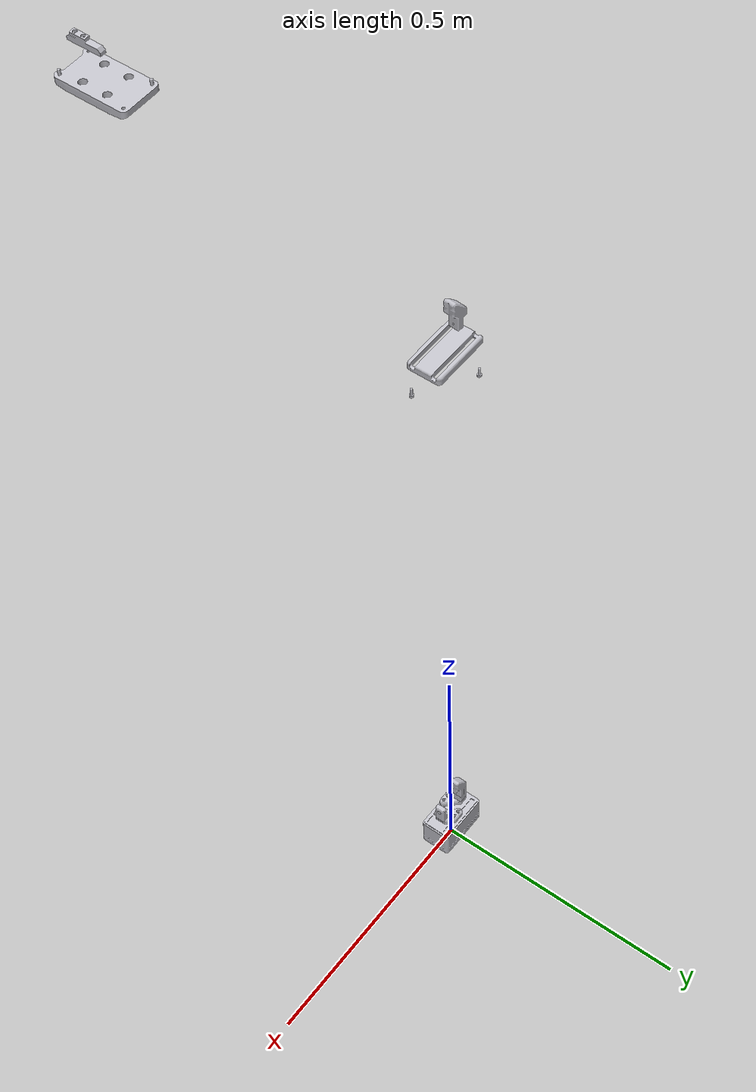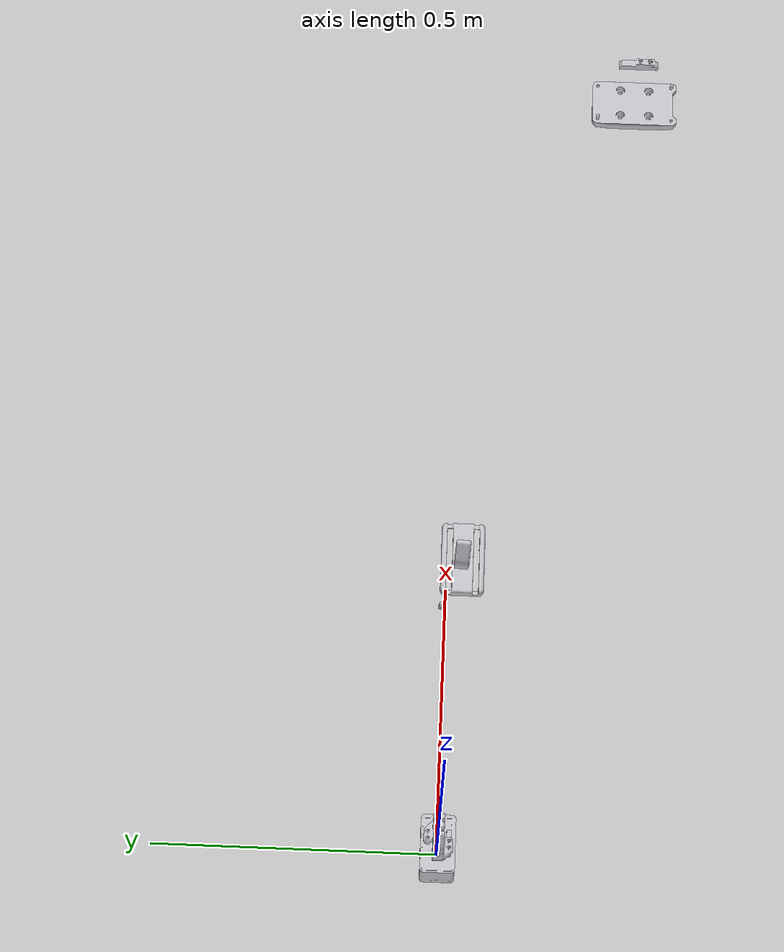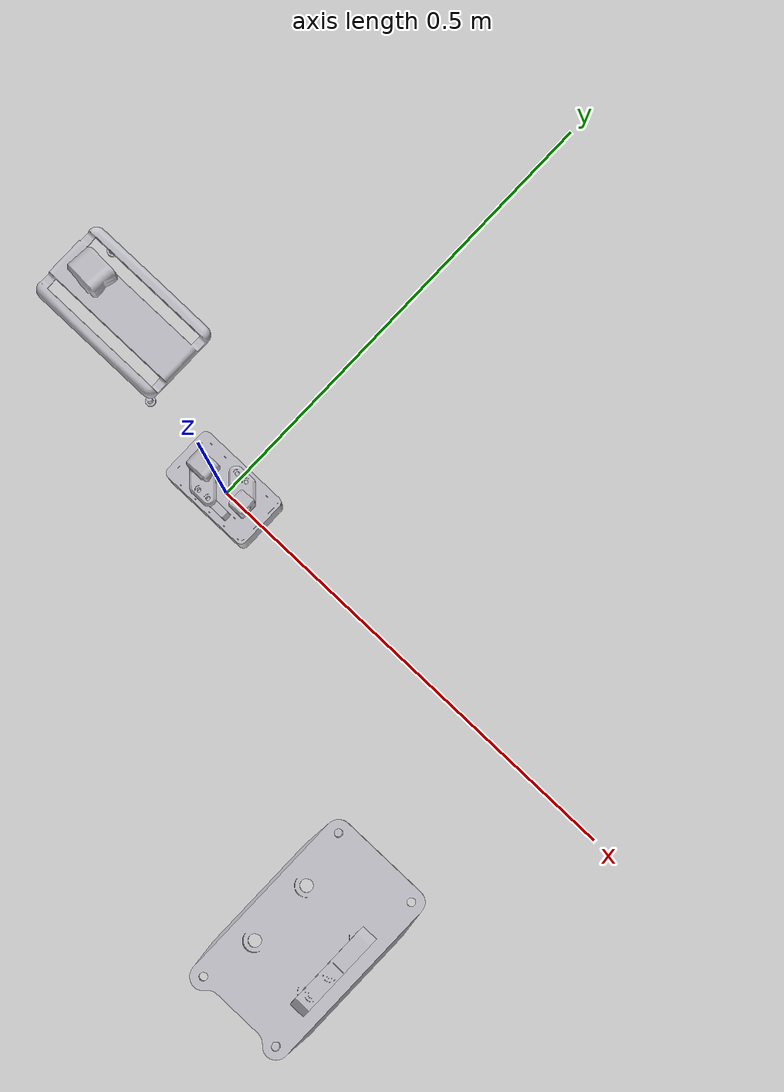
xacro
<?xml version="1.0" ?>
<robot name="gripkit_cr_plus_l_bb" xmlns:xacro="http://www.ros.org/wiki/xacro">

<xacro:include filename="$(find gripkit_cr_plus_l_bb_description)/urdf/gripkit_cr_plus_l_bb.trans" />
<xacro:include filename="$(find gripkit_cr_plus_l_bb_description)/urdf/gripkit_cr_plus_l_bb.gazebo" />

<xacro:property name="max_velocity" value="10"/>
<xacro:property name="max_effort" value="100"/>

<link name="SF-ISO50-CRG200_Customer">
  <inertial>
    <origin xyz="-0.000839387245317249 1.3268462236734284e-07 0.0056277999249054874" rpy="0 0 0"/>
    <mass value="0.16831092346442011"/>
    <inertia ixx="5.7e-05" iyy="0.000144" izz="0.000197" ixy="-0.0" iyz="0.0" ixz="1e-06"/>
  </inertial>
  <visual>
    <origin xyz="0 0 0" rpy="0 0 0"/>
    <geometry>
      <mesh filename="package://gripkit_cr_plus_l_bb_description/meshes/SF-ISO50-CRG200_Customer.stl" scale="0.001 0.001 0.001"/>
    </geometry>
    <material name="silver"/>
  </visual>
  <collision>
    <origin xyz="0 0 0" rpy="0 0 0"/>
    <geometry>
      <mesh filename="package://gripkit_cr_plus_l_bb_description/meshes/SF-ISO50-CRG200_Customer.stl" scale="0.001 0.001 0.001"/>
    </geometry>
  </collision>
</link>

<link name="CRG200_body">
  <inertial>
    <origin xyz="-0.046013419522296255 0.023500046460400374 0.029719376870480135" rpy="0 0 0"/>
    <mass value="1.024019455093708"/>
    <inertia ixx="0.000598" iyy="0.001224" izz="0.001229" ixy="0.0" iyz="-0.0" ixz="-0.0"/>
  </inertial>
  <visual>
    <origin xyz="-0.046 0.0235 -0.011" rpy="0 0 0"/>
    <geometry>
      <mesh filename="package://gripkit_cr_plus_l_bb_description/meshes/CRG200_body.stl" scale="0.001 0.001 0.001"/>
    </geometry>
    <material name="silver"/>
  </visual>
  <collision>
    <origin xyz="-0.046 0.0235 -0.011" rpy="0 0 0"/>
    <geometry>
      <mesh filename="package://gripkit_cr_plus_l_bb_description/meshes/CRG200_body.stl" scale="0.001 0.001 0.001"/>
    </geometry>
  </collision>
</link>

<link name="CRG200_base_jaw_1">
  <inertial>
    <origin xyz="-0.001116596745818358 -2.0816681711721685e-17 0.004896836508835337" rpy="0 0 0"/>
    <mass value="0.028974809674202275"/>
    <inertia ixx="0.0" iyy="5e-06" izz="5e-06" ixy="0.0" iyz="0.0" ixz="0.0"/>
  </inertial>
  <visual>
    <origin xyz="-0.0 0.0185 -0.0686" rpy="0 0 0"/>
    <geometry>
      <mesh filename="package://gripkit_cr_plus_l_bb_description/meshes/CRG200_base_jaw_1.stl" scale="0.001 0.001 0.001"/>
    </geometry>
    <material name="silver"/>
  </visual>
  <collision>
    <origin xyz="-0.0 0.0185 -0.0686" rpy="0 0 0"/>
    <geometry>
      <mesh filename="package://gripkit_cr_plus_l_bb_description/meshes/CRG200_base_jaw_1.stl" scale="0.001 0.001 0.001"/>
    </geometry>
  </collision>
</link>

<link name="CRG200_base_jaw_2">
  <inertial>
    <origin xyz="0.001116596745818374 1.0408340855860843e-17 0.004896836508835337" rpy="0 0 0"/>
    <mass value="0.028974809674202275"/>
    <inertia ixx="0.0" iyy="5e-06" izz="5e-06" ixy="0.0" iyz="-0.0" ixz="-0.0"/>
  </inertial>
  <visual>
    <origin xyz="-0.0 -0.0185 -0.0686" rpy="0 0 0"/>
    <geometry>
      <mesh filename="package://gripkit_cr_plus_l_bb_description/meshes/CRG200_base_jaw_2.stl" scale="0.001 0.001 0.001"/>
    </geometry>
    <material name="silver"/>
  </visual>
  <collision>
    <origin xyz="-0.0 -0.0185 -0.0686" rpy="0 0 0"/>
    <geometry>
      <mesh filename="package://gripkit_cr_plus_l_bb_description/meshes/CRG200_base_jaw_2.stl" scale="0.001 0.001 0.001"/>
    </geometry>
  </collision>
</link>

<link name="CRG200_top_cover">
  <inertial>
    <origin xyz="-2.837104009083995e-09 7.283818491274739e-09 0.0040439255937821245" rpy="0 0 0"/>
    <mass value="0.117790703444327"/>
    <inertia ixx="3.5e-05" iyy="0.000112" izz="0.000144" ixy="-0.0" iyz="-0.0" ixz="0.0"/>
  </inertial>
  <visual>
    <origin xyz="-0.0 0.0 -0.0711" rpy="0 0 0"/>
    <geometry>
      <mesh filename="package://gripkit_cr_plus_l_bb_description/meshes/CRG200_top_cover.stl" scale="0.001 0.001 0.001"/>
    </geometry>
    <material name="silver"/>
  </visual>
  <collision>
    <origin xyz="-0.0 0.0 -0.0711" rpy="0 0 0"/>
    <geometry>
      <mesh filename="package://gripkit_cr_plus_l_bb_description/meshes/CRG200_top_cover.stl" scale="0.001 0.001 0.001"/>
    </geometry>
  </collision>
</link>

<link name="ISO_4762_-_M4_x_12ISO_1">
  <inertial>
    <origin xyz="-6.938893903907228e-18 4.0060663120122797e-13 0.0022480078452116357" rpy="0 0 0"/>
    <mass value="0.002203374250243251"/>
    <inertia ixx="0.0" iyy="0.0" izz="0.0" ixy="0.0" iyz="0.0" ixz="0.0"/>
  </inertial>
  <visual>
    <origin xyz="0.046 0.0235 -0.0065" rpy="0 0 0"/>
    <geometry>
      <mesh filename="package://gripkit_cr_plus_l_bb_description/meshes/ISO_4762_-_M4_x_12ISO_1.stl" scale="0.001 0.001 0.001"/>
    </geometry>
    <material name="silver"/>
  </visual>
  <collision>
    <origin xyz="0.046 0.0235 -0.0065" rpy="0 0 0"/>
    <geometry>
      <mesh filename="package://gripkit_cr_plus_l_bb_description/meshes/ISO_4762_-_M4_x_12ISO_1.stl" scale="0.001 0.001 0.001"/>
    </geometry>
  </collision>
</link>

<link name="ISO_4762_-_M4_x_12ISO_2">
  <inertial>
    <origin xyz="6.938893903907228e-18 4.0060663120122797e-13 0.0022480078452116357" rpy="0 0 0"/>
    <mass value="0.002203374250243251"/>
    <inertia ixx="0.0" iyy="0.0" izz="0.0" ixy="-0.0" iyz="0.0" ixz="-0.0"/>
  </inertial>
  <visual>
    <origin xyz="-0.046 0.0235 -0.0065" rpy="0 0 0"/>
    <geometry>
      <mesh filename="package://gripkit_cr_plus_l_bb_description/meshes/ISO_4762_-_M4_x_12ISO_2.stl" scale="0.001 0.001 0.001"/>
    </geometry>
    <material name="silver"/>
  </visual>
  <collision>
    <origin xyz="-0.046 0.0235 -0.0065" rpy="0 0 0"/>
    <geometry>
      <mesh filename="package://gripkit_cr_plus_l_bb_description/meshes/ISO_4762_-_M4_x_12ISO_2.stl" scale="0.001 0.001 0.001"/>
    </geometry>
  </collision>
</link>

<link name="ISO_4762_-_M4_x_12ISO_3">
  <inertial>
    <origin xyz="6.938893903907228e-18 4.006101006481799e-13 0.0022480078452116357" rpy="0 0 0"/>
    <mass value="0.002203374250243251"/>
    <inertia ixx="0.0" iyy="0.0" izz="0.0" ixy="0.0" iyz="0.0" ixz="-0.0"/>
  </inertial>
  <visual>
    <origin xyz="-0.046 -0.0235 -0.0065" rpy="0 0 0"/>
    <geometry>
      <mesh filename="package://gripkit_cr_plus_l_bb_description/meshes/ISO_4762_-_M4_x_12ISO_3.stl" scale="0.001 0.001 0.001"/>
    </geometry>
    <material name="silver"/>
  </visual>
  <collision>
    <origin xyz="-0.046 -0.0235 -0.0065" rpy="0 0 0"/>
    <geometry>
      <mesh filename="package://gripkit_cr_plus_l_bb_description/meshes/ISO_4762_-_M4_x_12ISO_3.stl" scale="0.001 0.001 0.001"/>
    </geometry>
  </collision>
</link>

<link name="ISO_4762_-_M4_x_12ISO_4">
  <inertial>
    <origin xyz="-6.938893903907228e-18 4.006101006481799e-13 0.0022480078452116357" rpy="0 0 0"/>
    <mass value="0.002203374250243251"/>
    <inertia ixx="0.0" iyy="0.0" izz="0.0" ixy="0.0" iyz="0.0" ixz="0.0"/>
  </inertial>
  <visual>
    <origin xyz="0.046 -0.0235 -0.0065" rpy="0 0 0"/>
    <geometry>
      <mesh filename="package://gripkit_cr_plus_l_bb_description/meshes/ISO_4762_-_M4_x_12ISO_4.stl" scale="0.001 0.001 0.001"/>
    </geometry>
    <material name="silver"/>
  </visual>
  <collision>
    <origin xyz="0.046 -0.0235 -0.0065" rpy="0 0 0"/>
    <geometry>
      <mesh filename="package://gripkit_cr_plus_l_bb_description/meshes/ISO_4762_-_M4_x_12ISO_4.stl" scale="0.001 0.001 0.001"/>
    </geometry>
  </collision>
</link>

<link name="BE_20-030_CUSTOMER_v1_1">
  <inertial>
    <origin xyz="-0.01548587046158074 0.010207189127588168 0.00490301880176619" rpy="0 0 0"/>
    <mass value="0.07101056528211638"/>
    <inertia ixx="7e-06" iyy="8e-06" izz="1.4e-05" ixy="4e-06" iyz="-0.0" ixz="0.0"/>
  </inertial>
  <visual>
    <origin xyz="0.002 0.0185 -0.081" rpy="0 0 0"/>
    <geometry>
      <mesh filename="package://gripkit_cr_plus_l_bb_description/meshes/BE_20-030_CUSTOMER_v1_1.stl" scale="0.001 0.001 0.001"/>
    </geometry>
    <material name="silver"/>
  </visual>
  <collision>
    <origin xyz="0.002 0.0185 -0.081" rpy="0 0 0"/>
    <geometry>
      <mesh filename="package://gripkit_cr_plus_l_bb_description/meshes/BE_20-030_CUSTOMER_v1_1.stl" scale="0.001 0.001 0.001"/>
    </geometry>
  </collision>
</link>

<link name="BE_20-030_CUSTOMER_v1_2">
  <inertial>
    <origin xyz="0.015485870461580746 -0.010207189127588183 0.004903018801767051" rpy="0 0 0"/>
    <mass value="0.07101056528211638"/>
    <inertia ixx="7e-06" iyy="8e-06" izz="1.4e-05" ixy="4e-06" iyz="0.0" ixz="-0.0"/>
  </inertial>
  <visual>
    <origin xyz="-0.002 -0.0185 -0.081" rpy="0 0 0"/>
    <geometry>
      <mesh filename="package://gripkit_cr_plus_l_bb_description/meshes/BE_20-030_CUSTOMER_v1_2.stl" scale="0.001 0.001 0.001"/>
    </geometry>
    <material name="silver"/>
  </visual>
  <collision>
    <origin xyz="-0.002 -0.0185 -0.081" rpy="0 0 0"/>
    <geometry>
      <mesh filename="package://gripkit_cr_plus_l_bb_description/meshes/BE_20-030_CUSTOMER_v1_2.stl" scale="0.001 0.001 0.001"/>
    </geometry>
  </collision>
</link>

<link name="AC_20-025_CUSTOMER_v1_1">
  <inertial>
    <origin xyz="-0.001943760034278895 4.121102397658485e-17 0.014328388306272574" rpy="0 0 0"/>
    <mass value="0.07018824497649055"/>
    <inertia ixx="9e-06" iyy="9e-06" izz="4e-06" ixy="-0.0" iyz="-0.0" ixz="1e-06"/>
  </inertial>
  <visual>
    <origin xyz="0.027 -0.0 -0.091" rpy="0 0 0"/>
    <geometry>
      <mesh filename="package://gripkit_cr_plus_l_bb_description/meshes/AC_20-025_CUSTOMER_v1_1.stl" scale="0.001 0.001 0.001"/>
    </geometry>
    <material name="silver"/>
  </visual>
  <collision>
    <origin xyz="0.027 -0.0 -0.091" rpy="0 0 0"/>
    <geometry>
      <mesh filename="package://gripkit_cr_plus_l_bb_description/meshes/AC_20-025_CUSTOMER_v1_1.stl" scale="0.001 0.001 0.001"/>
    </geometry>
  </collision>
</link>

<link name="AC_20-025_CUSTOMER_v1_2">
  <inertial>
    <origin xyz="0.0019437600342788186 1.639628989286934e-17 0.014328388306273435" rpy="0 0 0"/>
    <mass value="0.07018824497649055"/>
    <inertia ixx="9e-06" iyy="9e-06" izz="4e-06" ixy="-0.0" iyz="0.0" ixz="-1e-06"/>
  </inertial>
  <visual>
    <origin xyz="-0.027 0.0 -0.091" rpy="0 0 0"/>
    <geometry>
      <mesh filename="package://gripkit_cr_plus_l_bb_description/meshes/AC_20-025_CUSTOMER_v1_2.stl" scale="0.001 0.001 0.001"/>
    </geometry>
    <material name="silver"/>
  </visual>
  <collision>
    <origin xyz="-0.027 0.0 -0.091" rpy="0 0 0"/>
    <geometry>
      <mesh filename="package://gripkit_cr_plus_l_bb_description/meshes/AC_20-025_CUSTOMER_v1_2.stl" scale="0.001 0.001 0.001"/>
    </geometry>
  </collision>
</link>

<link name="FT_20-CR_CUSTOMER_v1_1">
  <inertial>
    <origin xyz="0.0056745324669938944 -3.914404976963761e-15 0.020919520309735193" rpy="0 0 0"/>
    <mass value="0.13587538757333883"/>
    <inertia ixx="3e-05" iyy="3.2e-05" izz="1.1e-05" ixy="-0.0" iyz="-0.0" ixz="-5e-06"/>
  </inertial>
  <visual>
    <origin xyz="0.027 -0.0 -0.116" rpy="0 0 0"/>
    <geometry>
      <mesh filename="package://gripkit_cr_plus_l_bb_description/meshes/FT_20-CR_CUSTOMER_v1_1.stl" scale="0.001 0.001 0.001"/>
    </geometry>
    <material name="silver"/>
  </visual>
  <collision>
    <origin xyz="0.027 -0.0 -0.116" rpy="0 0 0"/>
    <geometry>
      <mesh filename="package://gripkit_cr_plus_l_bb_description/meshes/FT_20-CR_CUSTOMER_v1_1.stl" scale="0.001 0.001 0.001"/>
    </geometry>
  </collision>
</link>

<link name="FT_20-CR_CUSTOMER_v1_2">
  <inertial>
    <origin xyz="-0.005674532466994044 3.957899792938257e-15 0.020919520309735193" rpy="0 0 0"/>
    <mass value="0.13587538757333883"/>
    <inertia ixx="3e-05" iyy="3.2e-05" izz="1.1e-05" ixy="-0.0" iyz="0.0" ixz="5e-06"/>
  </inertial>
  <visual>
    <origin xyz="-0.027 -0.0 -0.116" rpy="0 0 0"/>
    <geometry>
      <mesh filename="package://gripkit_cr_plus_l_bb_description/meshes/FT_20-CR_CUSTOMER_v1_2.stl" scale="0.001 0.001 0.001"/>
    </geometry>
    <material name="silver"/>
  </visual>
  <collision>
    <origin xyz="-0.027 -0.0 -0.116" rpy="0 0 0"/>
    <geometry>
      <mesh filename="package://gripkit_cr_plus_l_bb_description/meshes/FT_20-CR_CUSTOMER_v1_2.stl" scale="0.001 0.001 0.001"/>
    </geometry>
  </collision>
</link>

<joint name="Rigid10" type="fixed">
  <origin xyz="0.046 -0.0235 0.011" rpy="0 0 0"/>
  <parent link="SF-ISO50-CRG200_Customer"/>
  <child link="CRG200_body"/>
</joint>

<joint name="Slider01" type="prismatic">
  <origin xyz="-0.046 0.005 0.0576" rpy="0 0 0"/>
  <parent link="CRG200_body"/>
  <child link="CRG200_base_jaw_1"/>
  <axis xyz="1.0 0.0 0.0"/>
  <limit upper="0.021" lower="-0.021" effort="${max_effort}" velocity="${max_velocity}"/>
</joint>

<joint name="Slider02" type="prismatic">
  <origin xyz="-0.046 0.042 0.0576" rpy="0 0 0"/>
  <parent link="CRG200_body"/>
  <child link="CRG200_base_jaw_2"/>
  <axis xyz="1.0 0.0 0.0"/>
  <limit upper="0.021" lower="-0.021" effort="${max_effort}" velocity="${max_velocity}"/>
</joint>

<joint name="Rigid11" type="fixed">
  <origin xyz="-0.046 0.0235 0.0601" rpy="0 0 0"/>
  <parent link="CRG200_body"/>
  <child link="CRG200_top_cover"/>
</joint>

<joint name="Rigid12" type="fixed">
  <origin xyz="-0.046 -0.0235 0.0065" rpy="0 0 0"/>
  <parent link="SF-ISO50-CRG200_Customer"/>
  <child link="ISO_4762_-_M4_x_12ISO_1"/>
</joint>

<joint name="Rigid13" type="fixed">
  <origin xyz="0.046 -0.0235 0.0065" rpy="0 0 0"/>
  <parent link="SF-ISO50-CRG200_Customer"/>
  <child link="ISO_4762_-_M4_x_12ISO_2"/>
</joint>

<joint name="Rigid14" type="fixed">
  <origin xyz="0.046 0.0235 0.0065" rpy="0 0 0"/>
  <parent link="SF-ISO50-CRG200_Customer"/>
  <child link="ISO_4762_-_M4_x_12ISO_3"/>
</joint>

<joint name="Rigid15" type="fixed">
  <origin xyz="-0.046 0.0235 0.0065" rpy="0 0 0"/>
  <parent link="SF-ISO50-CRG200_Customer"/>
  <child link="ISO_4762_-_M4_x_12ISO_4"/>
</joint>

<joint name="Rigid16" type="fixed">
  <origin xyz="-0.002 0.0 0.0124" rpy="0 0 0"/>
  <parent link="CRG200_base_jaw_1"/>
  <child link="BE_20-030_CUSTOMER_v1_1"/>
</joint>

<joint name="Rigid17" type="fixed">
  <origin xyz="0.002 0.0 0.0124" rpy="0 0 0"/>
  <parent link="CRG200_base_jaw_2"/>
  <child link="BE_20-030_CUSTOMER_v1_2"/>
</joint>

<joint name="Rigid18" type="fixed">
  <origin xyz="-0.025 0.0185 0.01" rpy="0 0 0"/>
  <parent link="BE_20-030_CUSTOMER_v1_1"/>
  <child link="AC_20-025_CUSTOMER_v1_1"/>
</joint>

<joint name="Rigid19" type="fixed">
  <origin xyz="0.025 -0.0185 0.01" rpy="0 0 0"/>
  <parent link="BE_20-030_CUSTOMER_v1_2"/>
  <child link="AC_20-025_CUSTOMER_v1_2"/>
</joint>

<joint name="Rigid20" type="fixed">
  <origin xyz="0.0 0.0 0.025" rpy="0 0 0"/>
  <parent link="AC_20-025_CUSTOMER_v1_1"/>
  <child link="FT_20-CR_CUSTOMER_v1_1"/>
</joint>

<joint name="Rigid21" type="fixed">
  <origin xyz="0.0 0.0 0.025" rpy="0 0 0"/>
  <parent link="AC_20-025_CUSTOMER_v1_2"/>
  <child link="FT_20-CR_CUSTOMER_v1_2"/>
</joint>

</robot>
